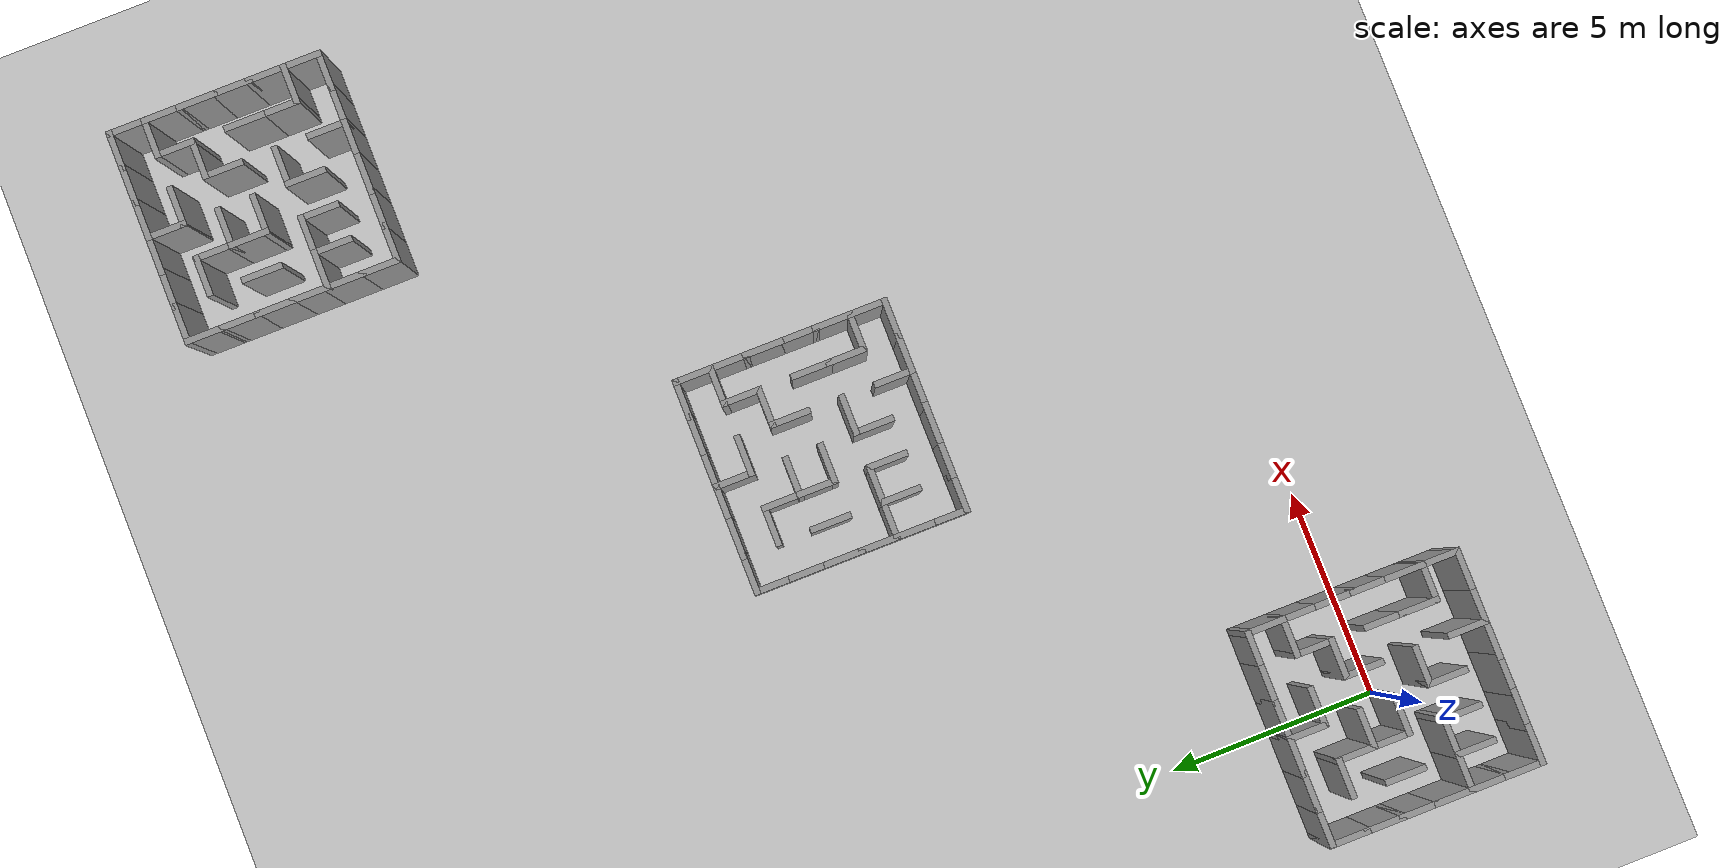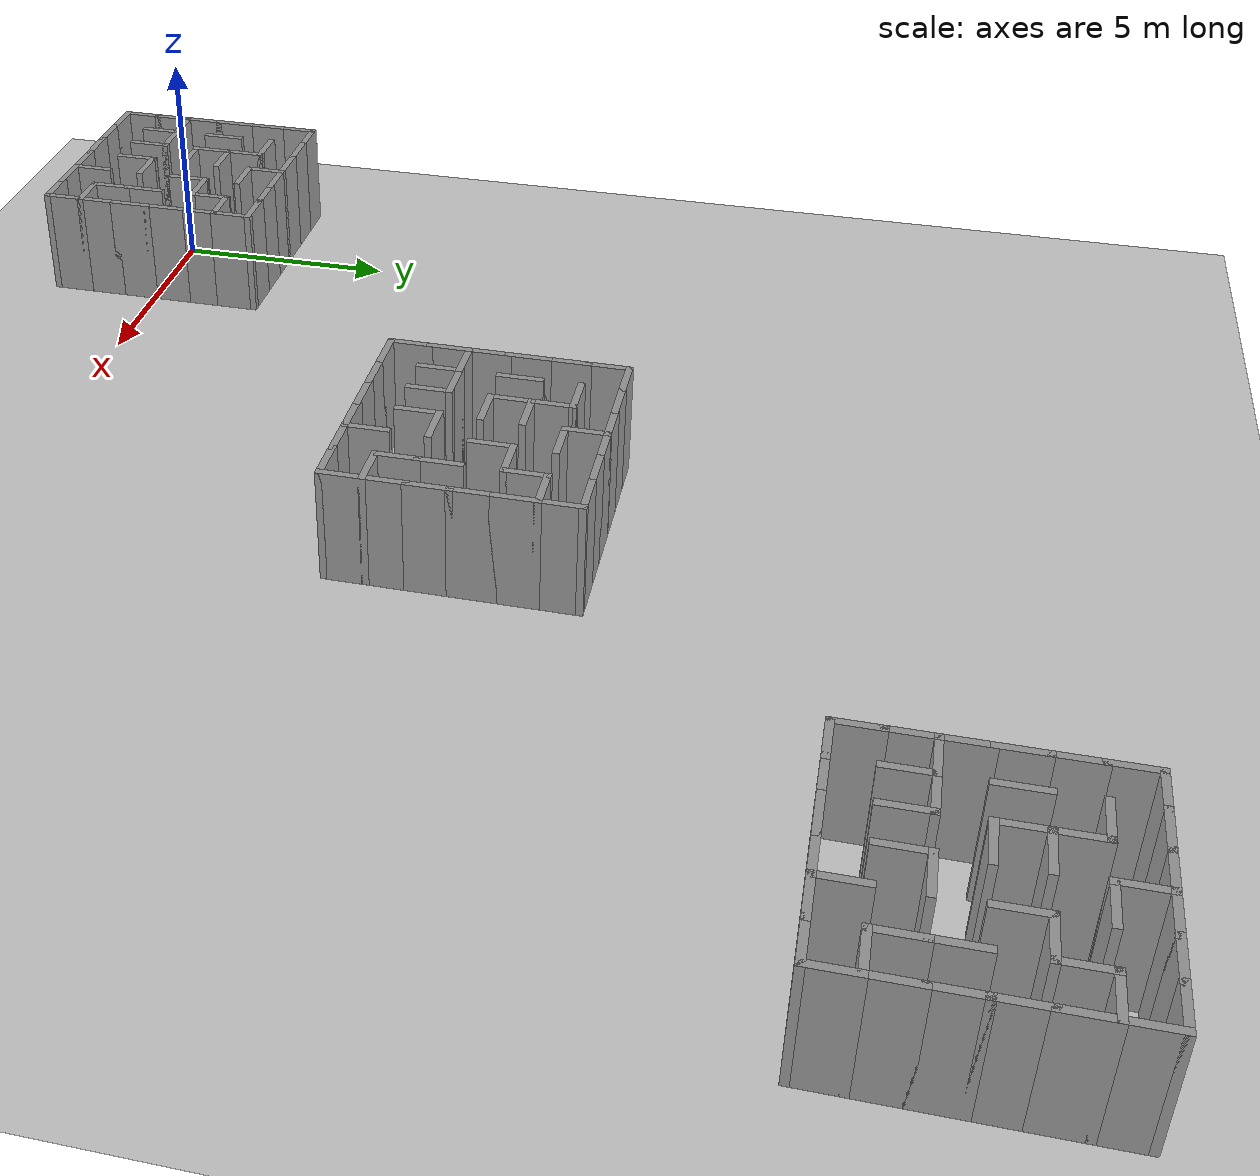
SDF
<sdf version="1.6">
 <world name="default">
  <include><uri>model://sun</uri></include>
  <include><uri>model://ground_plane</uri></include>
  <include><uri>model://maze</uri></include>
  <include><uri>model://maze</uri><pose>10 10 0 0 0 0</pose></include>
  <include><uri>model://maze</uri><pose>20 20 0 0 0 0</pose></include>
 </world>
</sdf>
